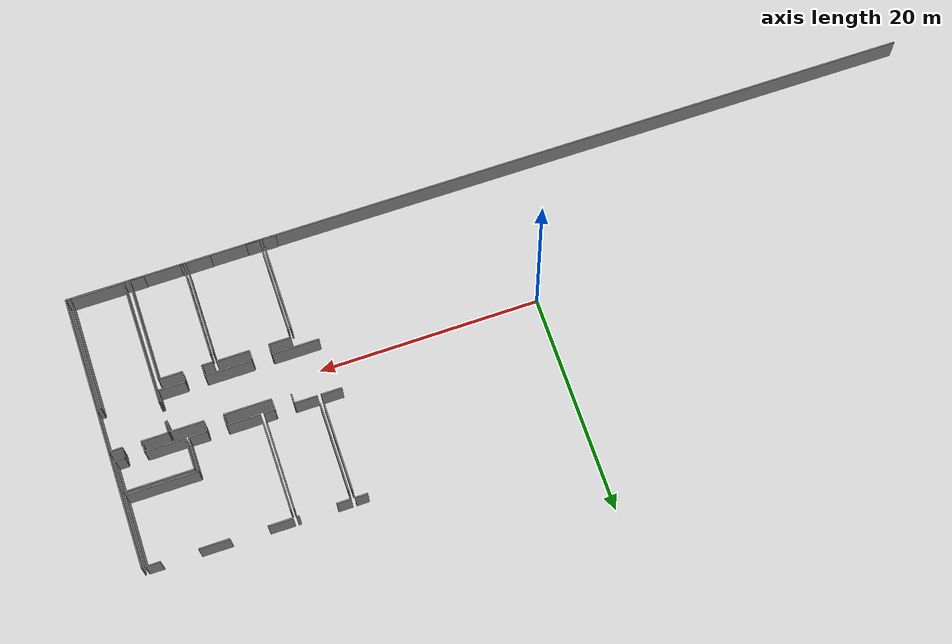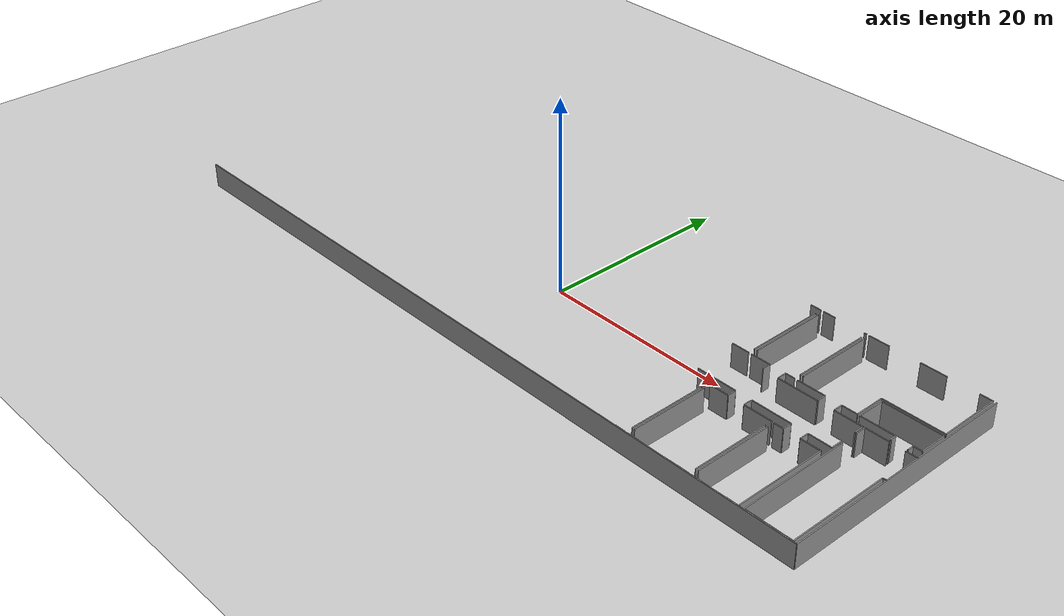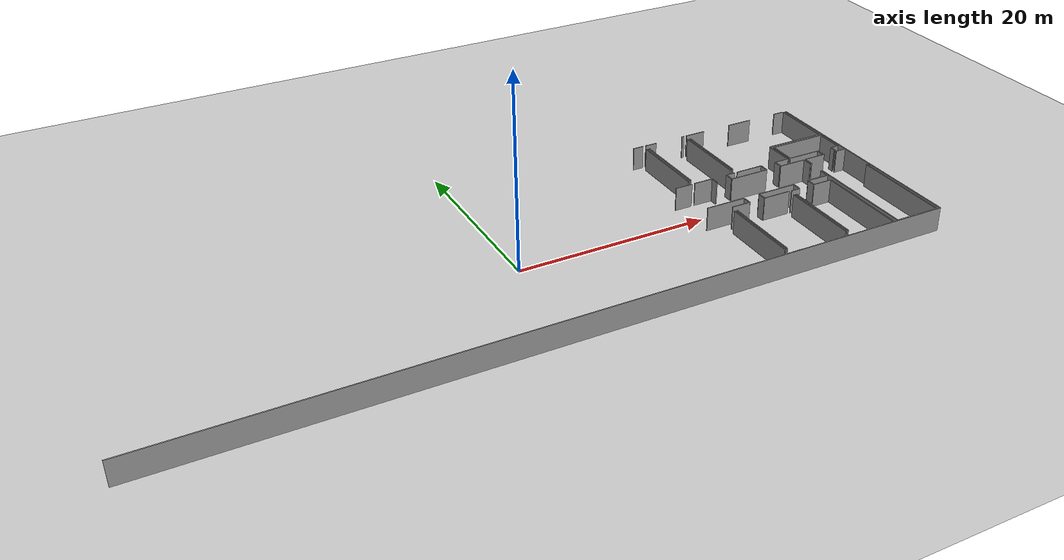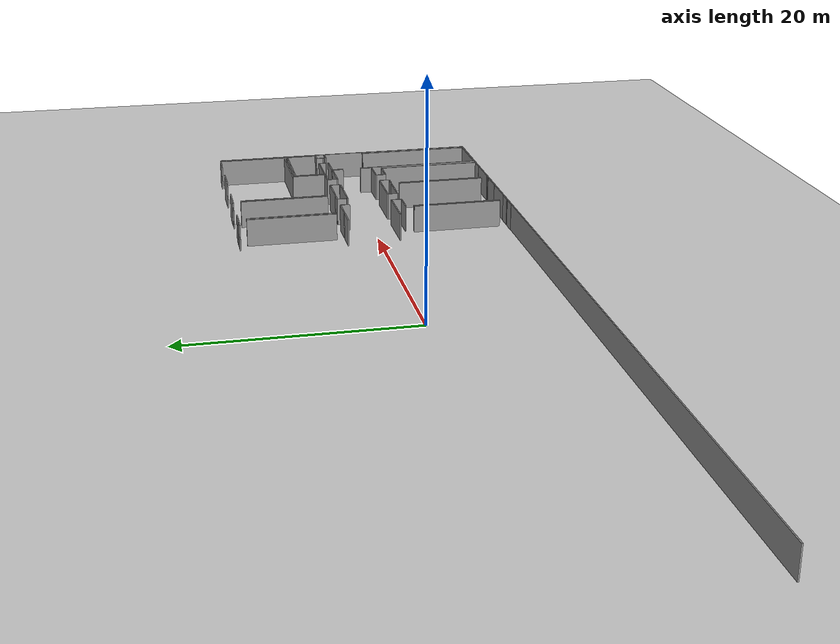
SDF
<sdf version="1.6">
 <world name="default">
  <model name="ground_plane">
   <static>1</static>
   <link name="link">
    <collision name="collision">
     <geometry><plane><normal>0 0 1</normal><size>100 100</size></plane></geometry>
     <surface><friction><ode><mu>100</mu><mu2>50</mu2></ode></friction></surface>
    </collision>
    <visual name="visual">
     <cast_shadows>0</cast_shadows>
     <geometry><plane><normal>0 0 1</normal><size>100 100</size></plane></geometry>
     <material>
      <script><uri>file://media/materials/scripts/gazebo.material</uri><name>Gazebo/Grey</name></script>
     </material>
    </visual>
   </link>
  </model>
  <model name="50052754">
   <static>1</static>
   <link name="Wall_102">
    <collision name="Wall_102_Collision">
     <geometry><box><size>4.26270246284 0.1 2.5</size></box></geometry>
     <pose>2.13135123142 0 1.25 0 0 0</pose>
    </collision>
    <visual name="Wall_102_Visual">
     <pose>2.13135123142 0 1.25 0 0 0</pose>
     <geometry><box><size>4.26270246284 0.1 2.5</size></box></geometry>
     <material>
      <script><uri>file://media/materials/scripts/gazebo.material</uri><name>Gazebo/Grey</name></script>
      <ambient>1 1 1 1</ambient>
     </material>
    </visual>
    <pose>63.7099115661 -10.5760562934 0 0 0 0.0</pose>
   </link>
   <link name="Wall_103">
    <collision name="Wall_103_Collision">
     <geometry><box><size>2.97670290659 0.1 2.5</size></box></geometry>
     <pose>1.48835145329 0 1.25 0 0 0</pose>
    </collision>
    <visual name="Wall_103_Visual">
     <pose>1.48835145329 0 1.25 0 0 0</pose>
     <geometry><box><size>2.97670290659 0.1 2.5</size></box></geometry>
     <material>
      <script><uri>file://media/materials/scripts/gazebo.material</uri><name>Gazebo/Grey</name></script>
      <ambient>1 1 1 1</ambient>
     </material>
    </visual>
    <pose>69.7074392215 -10.5760562934 0 0 0 0.0</pose>
   </link>
   <link name="Wall_104">
    <collision name="Wall_104_Collision">
     <geometry><box><size>1.05271165489 0.1 2.5</size></box></geometry>
     <pose>0.526355827443 0 1.25 0 0 0</pose>
    </collision>
    <visual name="Wall_104_Visual">
     <pose>0.526355827443 0 1.25 0 0 0</pose>
     <geometry><box><size>1.05271165489 0.1 2.5</size></box></geometry>
     <material>
      <script><uri>file://media/materials/scripts/gazebo.material</uri><name>Gazebo/Grey</name></script>
      <ambient>1 1 1 1</ambient>
     </material>
    </visual>
    <pose>72.6841421281 -10.5760562934 0 0 0 -1.57079632679</pose>
   </link>
   <link name="Wall_105">
    <collision name="Wall_105_Collision">
     <geometry><box><size>1.09290310311 0.1 2.5</size></box></geometry>
     <pose>0.546451551555 0 1.25 0 0 0</pose>
    </collision>
    <visual name="Wall_105_Visual">
     <pose>0.546451551555 0 1.25 0 0 0</pose>
     <geometry><box><size>1.09290310311 0.1 2.5</size></box></geometry>
     <material>
      <script><uri>file://media/materials/scripts/gazebo.material</uri><name>Gazebo/Grey</name></script>
      <ambient>1 1 1 1</ambient>
     </material>
    </visual>
    <pose>72.6841421281 -13.3779200609 0 0 0 -1.57079632679</pose>
   </link>
   <link name="Wall_106">
    <collision name="Wall_106_Collision">
     <geometry><box><size>2.43126565026 0.1 2.5</size></box></geometry>
     <pose>1.21563282513 0 1.25 0 0 0</pose>
    </collision>
    <visual name="Wall_106_Visual">
     <pose>1.21563282513 0 1.25 0 0 0</pose>
     <geometry><box><size>2.43126565026 0.1 2.5</size></box></geometry>
     <material>
      <script><uri>file://media/materials/scripts/gazebo.material</uri><name>Gazebo/Grey</name></script>
      <ambient>1 1 1 1</ambient>
     </material>
    </visual>
    <pose>72.6841421281 -14.470823164 0 0 0 3.14159265359</pose>
   </link>
   <link name="Wall_107">
    <collision name="Wall_107_Collision">
     <geometry><box><size>4.20995911122 0.1 2.5</size></box></geometry>
     <pose>2.10497955561 0 1.25 0 0 0</pose>
    </collision>
    <visual name="Wall_107_Visual">
     <pose>2.10497955561 0 1.25 0 0 0</pose>
     <geometry><box><size>4.20995911122 0.1 2.5</size></box></geometry>
     <material>
      <script><uri>file://media/materials/scripts/gazebo.material</uri><name>Gazebo/Grey</name></script>
      <ambient>1 1 1 1</ambient>
     </material>
    </visual>
    <pose>68.5000475451 -14.470823164 0 0 0 3.14159265359</pose>
   </link>
   <link name="Wall_108">
    <collision name="Wall_108_Collision">
     <geometry><box><size>4.222003867 0.1 2.5</size></box></geometry>
     <pose>2.1110019335 0 1.25 0 0 0</pose>
    </collision>
    <visual name="Wall_108_Visual">
     <pose>2.1110019335 0 1.25 0 0 0</pose>
     <geometry><box><size>4.222003867 0.1 2.5</size></box></geometry>
     <material>
      <script><uri>file://media/materials/scripts/gazebo.material</uri><name>Gazebo/Grey</name></script>
      <ambient>1 1 1 1</ambient>
     </material>
    </visual>
    <pose>62.5103806777 -14.470823164 0 0 0 3.14159265359</pose>
   </link>
   <link name="Wall_157">
    <collision name="Wall_157_Collision">
     <geometry><box><size>1.13144632159 0.1 2.5</size></box></geometry>
     <pose>0.565723160797 0 1.25 0 0 0</pose>
    </collision>
    <visual name="Wall_157_Visual">
     <pose>0.565723160797 0 1.25 0 0 0</pose>
     <geometry><box><size>1.13144632159 0.1 2.5</size></box></geometry>
     <material>
      <script><uri>file://media/materials/scripts/gazebo.material</uri><name>Gazebo/Grey</name></script>
      <ambient>1 1 1 1</ambient>
     </material>
    </visual>
    <pose>58.4804589686 -0.0124251164855 0 0 0 0.0</pose>
   </link>
   <link name="Wall_158">
    <collision name="Wall_158_Collision">
     <geometry><box><size>8.12944942787 0.1 2.5</size></box></geometry>
     <pose>4.06472471394 0 1.25 0 0 0</pose>
    </collision>
    <visual name="Wall_158_Visual">
     <pose>4.06472471394 0 1.25 0 0 0</pose>
     <geometry><box><size>8.12944942787 0.1 2.5</size></box></geometry>
     <material>
      <script><uri>file://media/materials/scripts/gazebo.material</uri><name>Gazebo/Grey</name></script>
      <ambient>1 1 1 1</ambient>
     </material>
    </visual>
    <pose>59.6119052902 -0.735490823798 0 0 0 -1.57079632679</pose>
   </link>
   <link name="Wall_159">
    <collision name="Wall_159_Collision">
     <geometry><box><size>1.87302291673 0.1 2.5</size></box></geometry>
     <pose>0.936511458366 0 1.25 0 0 0</pose>
    </collision>
    <visual name="Wall_159_Visual">
     <pose>0.936511458366 0 1.25 0 0 0</pose>
     <geometry><box><size>1.87302291673 0.1 2.5</size></box></geometry>
     <material>
      <script><uri>file://media/materials/scripts/gazebo.material</uri><name>Gazebo/Grey</name></script>
      <ambient>1 1 1 1</ambient>
     </material>
    </visual>
    <pose>59.6119052902 -9.60841865035 0 0 0 3.14159265359</pose>
   </link>
   <link name="Wall_163">
    <collision name="Wall_163_Collision">
     <geometry><box><size>8.10142952233 0.1 2.5</size></box></geometry>
     <pose>4.05071476117 0 1.25 0 0 0</pose>
    </collision>
    <visual name="Wall_163_Visual">
     <pose>4.05071476117 0 1.25 0 0 0</pose>
     <geometry><box><size>8.10142952233 0.1 2.5</size></box></geometry>
     <material>
      <script><uri>file://media/materials/scripts/gazebo.material</uri><name>Gazebo/Grey</name></script>
      <ambient>1 1 1 1</ambient>
     </material>
    </visual>
    <pose>59.9292529082 -8.85226156138 0 0 0 1.57079632679</pose>
   </link>
   <link name="Wall_164">
    <collision name="Wall_164_Collision">
     <geometry><box><size>1.28219594916 0.1 2.5</size></box></geometry>
     <pose>0.641097974579 0 1.25 0 0 0</pose>
    </collision>
    <visual name="Wall_164_Visual">
     <pose>0.641097974579 0 1.25 0 0 0</pose>
     <geometry><box><size>1.28219594916 0.1 2.5</size></box></geometry>
     <material>
      <script><uri>file://media/materials/scripts/gazebo.material</uri><name>Gazebo/Grey</name></script>
      <ambient>1 1 1 1</ambient>
     </material>
    </visual>
    <pose>59.9292529082 -0.0163555104758 0 0 0 0.0</pose>
   </link>
   <link name="Wall_165">
    <collision name="Wall_165_Collision">
     <geometry><box><size>0.252686297505 0.1 2.5</size></box></geometry>
     <pose>0.126343148753 0 1.25 0 0 0</pose>
    </collision>
    <visual name="Wall_165_Visual">
     <pose>0.126343148753 0 1.25 0 0 0</pose>
     <geometry><box><size>0.252686297505 0.1 2.5</size></box></geometry>
     <material>
      <script><uri>file://media/materials/scripts/gazebo.material</uri><name>Gazebo/Grey</name></script>
      <ambient>1 1 1 1</ambient>
     </material>
    </visual>
    <pose>64.4606168183 -0.0163555104758 0 0 0 0.0</pose>
   </link>
   <link name="Wall_166">
    <collision name="Wall_166_Collision">
     <geometry><box><size>8.11537608165 0.1 2.5</size></box></geometry>
     <pose>4.05768804083 0 1.25 0 0 0</pose>
    </collision>
    <visual name="Wall_166_Visual">
     <pose>4.05768804083 0 1.25 0 0 0</pose>
     <geometry><box><size>8.11537608165 0.1 2.5</size></box></geometry>
     <material>
      <script><uri>file://media/materials/scripts/gazebo.material</uri><name>Gazebo/Grey</name></script>
      <ambient>1 1 1 1</ambient>
     </material>
    </visual>
    <pose>64.7133031158 -0.73777298805 0 0 0 -1.57079632679</pose>
   </link>
   <link name="Wall_167">
    <collision name="Wall_167_Collision">
     <geometry><box><size>0.982344923769 0.1 2.5</size></box></geometry>
     <pose>0.491172461885 0 1.25 0 0 0</pose>
    </collision>
    <visual name="Wall_167_Visual">
     <pose>0.491172461885 0 1.25 0 0 0</pose>
     <geometry><box><size>0.982344923769 0.1 2.5</size></box></geometry>
     <material>
      <script><uri>file://media/materials/scripts/gazebo.material</uri><name>Gazebo/Grey</name></script>
      <ambient>1 1 1 1</ambient>
     </material>
    </visual>
    <pose>64.7133031158 -9.58673808996 0 0 0 3.14159265359</pose>
   </link>
   <link name="Wall_168">
    <collision name="Wall_168_Collision">
     <geometry><box><size>0.892833370313 0.1 2.5</size></box></geometry>
     <pose>0.446416685156 0 1.25 0 0 0</pose>
    </collision>
    <visual name="Wall_168_Visual">
     <pose>0.446416685156 0 1.25 0 0 0</pose>
     <geometry><box><size>0.892833370313 0.1 2.5</size></box></geometry>
     <material>
      <script><uri>file://media/materials/scripts/gazebo.material</uri><name>Gazebo/Grey</name></script>
      <ambient>1 1 1 1</ambient>
     </material>
    </visual>
    <pose>63.730958192 -9.58673808996 0 0 0 -1.57079632679</pose>
   </link>
   <link name="Wall_169">
    <collision name="Wall_169_Collision">
     <geometry><box><size>0.87571713842 0.1 2.5</size></box></geometry>
     <pose>0.43785856921 0 1.25 0 0 0</pose>
    </collision>
    <visual name="Wall_169_Visual">
     <pose>0.43785856921 0 1.25 0 0 0</pose>
     <geometry><box><size>0.87571713842 0.1 2.5</size></box></geometry>
     <material>
      <script><uri>file://media/materials/scripts/gazebo.material</uri><name>Gazebo/Grey</name></script>
      <ambient>1 1 1 1</ambient>
     </material>
    </visual>
    <pose>62.0024723446 -10.4795714603 0 0 0 1.57079632679</pose>
   </link>
   <link name="Wall_170">
    <collision name="Wall_170_Collision">
     <geometry><box><size>2.07322185943 0.1 2.5</size></box></geometry>
     <pose>1.03661092972 0 1.25 0 0 0</pose>
    </collision>
    <visual name="Wall_170_Visual">
     <pose>1.03661092972 0 1.25 0 0 0</pose>
     <geometry><box><size>2.07322185943 0.1 2.5</size></box></geometry>
     <material>
      <script><uri>file://media/materials/scripts/gazebo.material</uri><name>Gazebo/Grey</name></script>
      <ambient>1 1 1 1</ambient>
     </material>
    </visual>
    <pose>62.0024723446 -9.60385432185 0 0 0 3.14006378981</pose>
   </link>
   <link name="Wall_171">
    <collision name="Wall_171_Collision">
     <geometry><box><size>8.11284034359 0.1 2.5</size></box></geometry>
     <pose>4.0564201718 0 1.25 0 0 0</pose>
    </collision>
    <visual name="Wall_171_Visual">
     <pose>4.0564201718 0 1.25 0 0 0</pose>
     <geometry><box><size>8.11284034359 0.1 2.5</size></box></geometry>
     <material>
      <script><uri>file://media/materials/scripts/gazebo.material</uri><name>Gazebo/Grey</name></script>
      <ambient>1 1 1 1</ambient>
     </material>
    </visual>
    <pose>65.0004754509 -8.84630257694 0 0 0 1.57079632679</pose>
   </link>
   <link name="Wall_172">
    <collision name="Wall_172_Collision">
     <geometry><box><size>2.18301689435 0.1 2.5</size></box></geometry>
     <pose>1.09150844718 0 1.25 0 0 0</pose>
    </collision>
    <visual name="Wall_172_Visual">
     <pose>1.09150844718 0 1.25 0 0 0</pose>
     <geometry><box><size>2.18301689435 0.1 2.5</size></box></geometry>
     <material>
      <script><uri>file://media/materials/scripts/gazebo.material</uri><name>Gazebo/Grey</name></script>
      <ambient>1 1 1 1</ambient>
     </material>
    </visual>
    <pose>65.0004754509 -0.0185108878253 0 0 0 0.0</pose>
   </link>
   <link name="Wall_173">
    <collision name="Wall_173_Collision">
     <geometry><box><size>2.7161558211 0.1 2.5</size></box></geometry>
     <pose>1.35807791055 0 1.25 0 0 0</pose>
    </collision>
    <visual name="Wall_173_Visual">
     <pose>1.35807791055 0 1.25 0 0 0</pose>
     <geometry><box><size>2.7161558211 0.1 2.5</size></box></geometry>
     <material>
      <script><uri>file://media/materials/scripts/gazebo.material</uri><name>Gazebo/Grey</name></script>
      <ambient>1 1 1 1</ambient>
     </material>
    </visual>
    <pose>70.4554819487 -0.0185108878253 0 0 0 0.0</pose>
   </link>
   <link name="Wall_174">
    <collision name="Wall_174_Collision">
     <geometry><box><size>1.29360677042 0.1 2.5</size></box></geometry>
     <pose>0.64680338521 0 1.25 0 0 0</pose>
    </collision>
    <visual name="Wall_174_Visual">
     <pose>0.64680338521 0 1.25 0 0 0</pose>
     <geometry><box><size>1.29360677042 0.1 2.5</size></box></geometry>
     <material>
      <script><uri>file://media/materials/scripts/gazebo.material</uri><name>Gazebo/Grey</name></script>
      <ambient>1 1 1 1</ambient>
     </material>
    </visual>
    <pose>76.4331040604 -0.0185108878253 0 0 0 0.0</pose>
   </link>
   <link name="Wall_175">
    <collision name="Wall_175_Collision">
     <geometry><box><size>6.43899965134 0.1 2.5</size></box></geometry>
     <pose>3.21949982567 0 1.25 0 0 0</pose>
    </collision>
    <visual name="Wall_175_Visual">
     <pose>3.21949982567 0 1.25 0 0 0</pose>
     <geometry><box><size>6.43899965134 0.1 2.5</size></box></geometry>
     <material>
      <script><uri>file://media/materials/scripts/gazebo.material</uri><name>Gazebo/Grey</name></script>
      <ambient>1 1 1 1</ambient>
     </material>
    </visual>
    <pose>77.7267108308 -0.0185108878253 0 0 0 -1.57079632679</pose>
   </link>
   <link name="Wall_176">
    <collision name="Wall_176_Collision">
     <geometry><box><size>6.39437066151 0.1 2.5</size></box></geometry>
     <pose>3.19718533076 0 1.25 0 0 0</pose>
    </collision>
    <visual name="Wall_176_Visual">
     <pose>3.19718533076 0 1.25 0 0 0</pose>
     <geometry><box><size>6.39437066151 0.1 2.5</size></box></geometry>
     <material>
      <script><uri>file://media/materials/scripts/gazebo.material</uri><name>Gazebo/Grey</name></script>
      <ambient>1 1 1 1</ambient>
     </material>
    </visual>
    <pose>77.7267108308 -6.45751053916 0 0 0 3.14159265359</pose>
   </link>
   <link name="Wall_177">
    <collision name="Wall_177_Collision">
     <geometry><box><size>3.13328473169 0.1 2.5</size></box></geometry>
     <pose>1.56664236584 0 1.25 0 0 0</pose>
    </collision>
    <visual name="Wall_177_Visual">
     <pose>1.56664236584 0 1.25 0 0 0</pose>
     <geometry><box><size>3.13328473169 0.1 2.5</size></box></geometry>
     <material>
      <script><uri>file://media/materials/scripts/gazebo.material</uri><name>Gazebo/Grey</name></script>
      <ambient>1 1 1 1</ambient>
     </material>
    </visual>
    <pose>71.3323401693 -6.45751053916 0 0 0 -1.57079632679</pose>
   </link>
   <link name="Wall_178">
    <collision name="Wall_178_Collision">
     <geometry><box><size>1.62059019303 0.1 2.5</size></box></geometry>
     <pose>0.810295096517 0 1.25 0 0 0</pose>
    </collision>
    <visual name="Wall_178_Visual">
     <pose>0.810295096517 0 1.25 0 0 0</pose>
     <geometry><box><size>1.62059019303 0.1 2.5</size></box></geometry>
     <material>
      <script><uri>file://media/materials/scripts/gazebo.material</uri><name>Gazebo/Grey</name></script>
      <ambient>1 1 1 1</ambient>
     </material>
    </visual>
    <pose>71.3323401693 -9.59079527085 0 0 0 3.14159265359</pose>
   </link>
   <link name="Wall_179">
    <collision name="Wall_179_Collision">
     <geometry><box><size>0.887001172779 0.1 2.5</size></box></geometry>
     <pose>0.443500586389 0 1.25 0 0 0</pose>
    </collision>
    <visual name="Wall_179_Visual">
     <pose>0.443500586389 0 1.25 0 0 0</pose>
     <geometry><box><size>0.887001172779 0.1 2.5</size></box></geometry>
     <material>
      <script><uri>file://media/materials/scripts/gazebo.material</uri><name>Gazebo/Grey</name></script>
      <ambient>1 1 1 1</ambient>
     </material>
    </visual>
    <pose>69.7117499762 -9.59079527085 0 0 0 -1.57079632679</pose>
   </link>
   <link name="Wall_180">
    <collision name="Wall_180_Collision">
     <geometry><box><size>0.892072648895 0.1 2.5</size></box></geometry>
     <pose>0.446036324448 0 1.25 0 0 0</pose>
    </collision>
    <visual name="Wall_180_Visual">
     <pose>0.446036324448 0 1.25 0 0 0</pose>
     <geometry><box><size>0.892072648895 0.1 2.5</size></box></geometry>
     <material>
      <script><uri>file://media/materials/scripts/gazebo.material</uri><name>Gazebo/Grey</name></script>
      <ambient>1 1 1 1</ambient>
     </material>
    </visual>
    <pose>67.9836444895 -10.4777964436 0 0 0 1.57079632679</pose>
   </link>
   <link name="Wall_181">
    <collision name="Wall_181_Collision">
     <geometry><box><size>2.98320405315 0.1 2.5</size></box></geometry>
     <pose>1.49160202658 0 1.25 0 0 0</pose>
    </collision>
    <visual name="Wall_181_Visual">
     <pose>1.49160202658 0 1.25 0 0 0</pose>
     <geometry><box><size>2.98320405315 0.1 2.5</size></box></geometry>
     <material>
      <script><uri>file://media/materials/scripts/gazebo.material</uri><name>Gazebo/Grey</name></script>
      <ambient>1 1 1 1</ambient>
     </material>
    </visual>
    <pose>67.9836444895 -9.58572379473 0 0 0 -3.13674760671</pose>
   </link>
   <link name="Wall_182">
    <collision name="Wall_182_Collision">
     <geometry><box><size>2.86779295699 0.1 2.5</size></box></geometry>
     <pose>1.43389647849 0 1.25 0 0 0</pose>
    </collision>
    <visual name="Wall_182_Visual">
     <pose>1.43389647849 0 1.25 0 0 0</pose>
     <geometry><box><size>2.86779295699 0.1 2.5</size></box></geometry>
     <material>
      <script><uri>file://media/materials/scripts/gazebo.material</uri><name>Gazebo/Grey</name></script>
      <ambient>1 1 1 1</ambient>
     </material>
    </visual>
    <pose>71.6007480427 -9.60816507655 0 0 0 1.57079632679</pose>
   </link>
   <link name="Wall_183">
    <collision name="Wall_183_Collision">
     <geometry><box><size>6.16894354813 0.1 2.5</size></box></geometry>
     <pose>3.08447177407 0 1.25 0 0 0</pose>
    </collision>
    <visual name="Wall_183_Visual">
     <pose>3.08447177407 0 1.25 0 0 0</pose>
     <geometry><box><size>6.16894354813 0.1 2.5</size></box></geometry>
     <material>
      <script><uri>file://media/materials/scripts/gazebo.material</uri><name>Gazebo/Grey</name></script>
      <ambient>1 1 1 1</ambient>
     </material>
    </visual>
    <pose>71.6007480427 -6.74037211956 0 0 0 0.0</pose>
   </link>
   <link name="Wall_184">
    <collision name="Wall_184_Collision">
     <geometry><box><size>2.86779295699 0.1 2.5</size></box></geometry>
     <pose>1.43389647849 0 1.25 0 0 0</pose>
    </collision>
    <visual name="Wall_184_Visual">
     <pose>1.43389647849 0 1.25 0 0 0</pose>
     <geometry><box><size>2.86779295699 0.1 2.5</size></box></geometry>
     <material>
      <script><uri>file://media/materials/scripts/gazebo.material</uri><name>Gazebo/Grey</name></script>
      <ambient>1 1 1 1</ambient>
     </material>
    </visual>
    <pose>77.7696915909 -6.74037211956 0 0 0 -1.57079632679</pose>
   </link>
   <link name="Wall_185">
    <collision name="Wall_185_Collision">
     <geometry><box><size>0.883704713303 0.1 2.5</size></box></geometry>
     <pose>0.441852356652 0 1.25 0 0 0</pose>
    </collision>
    <visual name="Wall_185_Visual">
     <pose>0.441852356652 0 1.25 0 0 0</pose>
     <geometry><box><size>0.883704713303 0.1 2.5</size></box></geometry>
     <material>
      <script><uri>file://media/materials/scripts/gazebo.material</uri><name>Gazebo/Grey</name></script>
      <ambient>1 1 1 1</ambient>
     </material>
    </visual>
    <pose>77.7696915909 -9.60816507655 0 0 0 3.14159265359</pose>
   </link>
   <link name="Wall_186">
    <collision name="Wall_186_Collision">
     <geometry><box><size>0.658277599924 0.1 2.5</size></box></geometry>
     <pose>0.329138799962 0 1.25 0 0 0</pose>
    </collision>
    <visual name="Wall_186_Visual">
     <pose>0.329138799962 0 1.25 0 0 0</pose>
     <geometry><box><size>0.658277599924 0.1 2.5</size></box></geometry>
     <material>
      <script><uri>file://media/materials/scripts/gazebo.material</uri><name>Gazebo/Grey</name></script>
      <ambient>1 1 1 1</ambient>
     </material>
    </visual>
    <pose>76.8859868776 -9.60816507655 0 0 0 -1.57079632679</pose>
   </link>
   <link name="Wall_187">
    <collision name="Wall_187_Collision">
     <geometry><box><size>0.080129322641 0.1 2.5</size></box></geometry>
     <pose>0.0400646613205 0 1.25 0 0 0</pose>
    </collision>
    <visual name="Wall_187_Visual">
     <pose>0.0400646613205 0 1.25 0 0 0</pose>
     <geometry><box><size>0.080129322641 0.1 2.5</size></box></geometry>
     <material>
      <script><uri>file://media/materials/scripts/gazebo.material</uri><name>Gazebo/Grey</name></script>
      <ambient>1 1 1 1</ambient>
     </material>
    </visual>
    <pose>76.8859868776 -10.2664426765 0 0 0 3.14159265359</pose>
   </link>
   <link name="Wall_188">
    <collision name="Wall_188_Collision">
     <geometry><box><size>0.0986402104663 0.1 2.5</size></box></geometry>
     <pose>0.0493201052331 0 1.25 0 0 0</pose>
    </collision>
    <visual name="Wall_188_Visual">
     <pose>0.0493201052331 0 1.25 0 0 0</pose>
     <geometry><box><size>0.0986402104663 0.1 2.5</size></box></geometry>
     <material>
      <script><uri>file://media/materials/scripts/gazebo.material</uri><name>Gazebo/Grey</name></script>
      <ambient>1 1 1 1</ambient>
     </material>
    </visual>
    <pose>75.2546197978 -10.2664426765 0 0 0 3.14159265359</pose>
   </link>
   <link name="Wall_189">
    <collision name="Wall_189_Collision">
     <geometry><box><size>0.663222289138 0.1 2.5</size></box></geometry>
     <pose>0.331611144569 0 1.25 0 0 0</pose>
    </collision>
    <visual name="Wall_189_Visual">
     <pose>0.331611144569 0 1.25 0 0 0</pose>
     <geometry><box><size>0.663222289138 0.1 2.5</size></box></geometry>
     <material>
      <script><uri>file://media/materials/scripts/gazebo.material</uri><name>Gazebo/Grey</name></script>
      <ambient>1 1 1 1</ambient>
     </material>
    </visual>
    <pose>75.1559795873 -10.2664426765 0 0 0 1.57079632679</pose>
   </link>
   <link name="Wall_190">
    <collision name="Wall_190_Collision">
     <geometry><box><size>3.55523498317 0.1 2.5</size></box></geometry>
     <pose>1.77761749158 0 1.25 0 0 0</pose>
    </collision>
    <visual name="Wall_190_Visual">
     <pose>1.77761749158 0 1.25 0 0 0</pose>
     <geometry><box><size>3.55523498317 0.1 2.5</size></box></geometry>
     <material>
      <script><uri>file://media/materials/scripts/gazebo.material</uri><name>Gazebo/Grey</name></script>
      <ambient>1 1 1 1</ambient>
     </material>
    </visual>
    <pose>75.1559795873 -9.60322038733 0 0 0 -3.1402018339</pose>
   </link>
   <link name="Wall_191">
    <collision name="Wall_191_Collision">
     <geometry><box><size>4.79584138958 0.1 2.5</size></box></geometry>
     <pose>2.39792069479 0 1.25 0 0 0</pose>
    </collision>
    <visual name="Wall_191_Visual">
     <pose>2.39792069479 0 1.25 0 0 0</pose>
     <geometry><box><size>4.79584138958 0.1 2.5</size></box></geometry>
     <material>
      <script><uri>file://media/materials/scripts/gazebo.material</uri><name>Gazebo/Grey</name></script>
      <ambient>1 1 1 1</ambient>
     </material>
    </visual>
    <pose>72.8716599575 -24.9689055121 0 0 0 0.0</pose>
   </link>
   <link name="Wall_192">
    <collision name="Wall_192_Collision">
     <geometry><box><size>10.4885733304 0.1 2.5</size></box></geometry>
     <pose>5.24428666519 0 1.25 0 0 0</pose>
    </collision>
    <visual name="Wall_192_Visual">
     <pose>5.24428666519 0 1.25 0 0 0</pose>
     <geometry><box><size>10.4885733304 0.1 2.5</size></box></geometry>
     <material>
      <script><uri>file://media/materials/scripts/gazebo.material</uri><name>Gazebo/Grey</name></script>
      <ambient>1 1 1 1</ambient>
     </material>
    </visual>
    <pose>77.6675013471 -24.9689055121 0 0 0 1.57079632679</pose>
   </link>
   <link name="Wall_193">
    <collision name="Wall_193_Collision">
     <geometry><box><size>0.385685758661 0.1 2.5</size></box></geometry>
     <pose>0.192842879331 0 1.25 0 0 0</pose>
    </collision>
    <visual name="Wall_193_Visual">
     <pose>0.192842879331 0 1.25 0 0 0</pose>
     <geometry><box><size>0.385685758661 0.1 2.5</size></box></geometry>
     <material>
      <script><uri>file://media/materials/scripts/gazebo.material</uri><name>Gazebo/Grey</name></script>
      <ambient>1 1 1 1</ambient>
     </material>
    </visual>
    <pose>77.6675013471 -14.4803321817 0 0 0 0.0</pose>
   </link>
   <link name="Wall_194">
    <collision name="Wall_194_Collision">
     <geometry><box><size>1.214491743 0.1 2.5</size></box></geometry>
     <pose>0.607245871501 0 1.25 0 0 0</pose>
    </collision>
    <visual name="Wall_194_Visual">
     <pose>0.607245871501 0 1.25 0 0 0</pose>
     <geometry><box><size>1.214491743 0.1 2.5</size></box></geometry>
     <material>
      <script><uri>file://media/materials/scripts/gazebo.material</uri><name>Gazebo/Grey</name></script>
      <ambient>1 1 1 1</ambient>
     </material>
    </visual>
    <pose>78.0531871058 -10.5460077974 0 0 0 3.14159265359</pose>
   </link>
   <link name="Wall_195">
    <collision name="Wall_195_Collision">
     <geometry><box><size>2.40793686012 0.1 2.5</size></box></geometry>
     <pose>1.20396843006 0 1.25 0 0 0</pose>
    </collision>
    <visual name="Wall_195_Visual">
     <pose>1.20396843006 0 1.25 0 0 0</pose>
     <geometry><box><size>2.40793686012 0.1 2.5</size></box></geometry>
     <material>
      <script><uri>file://media/materials/scripts/gazebo.material</uri><name>Gazebo/Grey</name></script>
      <ambient>1 1 1 1</ambient>
     </material>
    </visual>
    <pose>75.245237567 -10.5460077974 0 0 0 3.14159265359</pose>
   </link>
   <link name="Wall_196">
    <collision name="Wall_196_Collision">
     <geometry><box><size>1.06944752607 0.1 2.5</size></box></geometry>
     <pose>0.534723763035 0 1.25 0 0 0</pose>
    </collision>
    <visual name="Wall_196_Visual">
     <pose>0.534723763035 0 1.25 0 0 0</pose>
     <geometry><box><size>1.06944752607 0.1 2.5</size></box></geometry>
     <material>
      <script><uri>file://media/materials/scripts/gazebo.material</uri><name>Gazebo/Grey</name></script>
      <ambient>1 1 1 1</ambient>
     </material>
    </visual>
    <pose>72.8373007068 -10.5460077974 0 0 0 -1.57079632679</pose>
   </link>
   <link name="Wall_197">
    <collision name="Wall_197_Collision">
     <geometry><box><size>11.6011792845 0.1 2.5</size></box></geometry>
     <pose>5.80058964225 0 1.25 0 0 0</pose>
    </collision>
    <visual name="Wall_197_Visual">
     <pose>5.80058964225 0 1.25 0 0 0</pose>
     <geometry><box><size>11.6011792845 0.1 2.5</size></box></geometry>
     <material>
      <script><uri>file://media/materials/scripts/gazebo.material</uri><name>Gazebo/Grey</name></script>
      <ambient>1 1 1 1</ambient>
     </material>
    </visual>
    <pose>72.8373007068 -13.3677771086 0 0 0 -1.56783461919</pose>
   </link>
   <link name="Wall_198">
    <collision name="Wall_198_Collision">
     <geometry><box><size>8.10307775207 0.1 2.5</size></box></geometry>
     <pose>4.05153887603 0 1.25 0 0 0</pose>
    </collision>
    <visual name="Wall_198_Visual">
     <pose>4.05153887603 0 1.25 0 0 0</pose>
     <geometry><box><size>8.10307775207 0.1 2.5</size></box></geometry>
     <material>
      <script><uri>file://media/materials/scripts/gazebo.material</uri><name>Gazebo/Grey</name></script>
      <ambient>1 1 1 1</ambient>
     </material>
    </visual>
    <pose>67.5159276047 -24.2699293163 0 0 0 1.57079632679</pose>
   </link>
   <link name="Wall_199">
    <collision name="Wall_199_Collision">
     <geometry><box><size>0.984627088022 0.1 2.5</size></box></geometry>
     <pose>0.492313544011 0 1.25 0 0 0</pose>
    </collision>
    <visual name="Wall_199_Visual">
     <pose>0.492313544011 0 1.25 0 0 0</pose>
     <geometry><box><size>0.984627088022 0.1 2.5</size></box></geometry>
     <material>
      <script><uri>file://media/materials/scripts/gazebo.material</uri><name>Gazebo/Grey</name></script>
      <ambient>1 1 1 1</ambient>
     </material>
    </visual>
    <pose>67.5159276047 -15.4316143142 0 0 0 0.0</pose>
   </link>
   <link name="Wall_200">
    <collision name="Wall_200_Collision">
     <geometry><box><size>0.915401439031 0.1 2.5</size></box></geometry>
     <pose>0.457700719516 0 1.25 0 0 0</pose>
    </collision>
    <visual name="Wall_200_Visual">
     <pose>0.457700719516 0 1.25 0 0 0</pose>
     <geometry><box><size>0.915401439031 0.1 2.5</size></box></geometry>
     <material>
      <script><uri>file://media/materials/scripts/gazebo.material</uri><name>Gazebo/Grey</name></script>
      <ambient>1 1 1 1</ambient>
     </material>
    </visual>
    <pose>68.5005546927 -15.4316143142 0 0 0 1.57079632679</pose>
   </link>
   <link name="Wall_201">
    <collision name="Wall_201_Collision">
     <geometry><box><size>0.905004912992 0.1 2.5</size></box></geometry>
     <pose>0.452502456496 0 1.25 0 0 0</pose>
    </collision>
    <visual name="Wall_201_Visual">
     <pose>0.452502456496 0 1.25 0 0 0</pose>
     <geometry><box><size>0.905004912992 0.1 2.5</size></box></geometry>
     <material>
      <script><uri>file://media/materials/scripts/gazebo.material</uri><name>Gazebo/Grey</name></script>
      <ambient>1 1 1 1</ambient>
     </material>
    </visual>
    <pose>70.2522425433 -14.5162128752 0 0 0 -1.57079632679</pose>
   </link>
   <link name="Wall_202">
    <collision name="Wall_202_Collision">
     <geometry><box><size>2.09299819329 0.1 2.5</size></box></geometry>
     <pose>1.04649909664 0 1.25 0 0 0</pose>
    </collision>
    <visual name="Wall_202_Visual">
     <pose>1.04649909664 0 1.25 0 0 0</pose>
     <geometry><box><size>2.09299819329 0.1 2.5</size></box></geometry>
     <material>
      <script><uri>file://media/materials/scripts/gazebo.material</uri><name>Gazebo/Grey</name></script>
      <ambient>1 1 1 1</ambient>
     </material>
    </visual>
    <pose>70.2522425433 -15.4212177882 0 0 0 0.0</pose>
   </link>
   <link name="Wall_203">
    <collision name="Wall_203_Collision">
     <geometry><box><size>9.59054169704 0.1 2.5</size></box></geometry>
     <pose>4.79527084852 0 1.25 0 0 0</pose>
    </collision>
    <visual name="Wall_203_Visual">
     <pose>4.79527084852 0 1.25 0 0 0</pose>
     <geometry><box><size>9.59054169704 0.1 2.5</size></box></geometry>
     <material>
      <script><uri>file://media/materials/scripts/gazebo.material</uri><name>Gazebo/Grey</name></script>
      <ambient>1 1 1 1</ambient>
     </material>
    </visual>
    <pose>72.3452407366 -15.4212177882 0 0 0 -1.57079632679</pose>
   </link>
   <link name="Wall_204">
    <collision name="Wall_204_Collision">
     <geometry><box><size>1.31351231418 0.1 2.5</size></box></geometry>
     <pose>0.656756157089 0 1.25 0 0 0</pose>
    </collision>
    <visual name="Wall_204_Visual">
     <pose>0.656756157089 0 1.25 0 0 0</pose>
     <geometry><box><size>1.31351231418 0.1 2.5</size></box></geometry>
     <material>
      <script><uri>file://media/materials/scripts/gazebo.material</uri><name>Gazebo/Grey</name></script>
      <ambient>1 1 1 1</ambient>
     </material>
    </visual>
    <pose>72.3452407366 -25.0117594852 0 0 0 3.14159265359</pose>
   </link>
   <link name="Wall_205">
    <collision name="Wall_205_Collision">
     <geometry><box><size>0.246479250257 0.1 2.5</size></box></geometry>
     <pose>0.123239625129 0 1.25 0 0 0</pose>
    </collision>
    <visual name="Wall_205_Visual">
     <pose>0.123239625129 0 1.25 0 0 0</pose>
     <geometry><box><size>0.246479250257 0.1 2.5</size></box></geometry>
     <material>
      <script><uri>file://media/materials/scripts/gazebo.material</uri><name>Gazebo/Grey</name></script>
      <ambient>1 1 1 1</ambient>
     </material>
    </visual>
    <pose>67.7624013439 -25.0117594852 0 0 0 -3.13490551047</pose>
   </link>
   <link name="Wall_206">
    <collision name="Wall_206_Collision">
     <geometry><box><size>8.10269739136 0.1 2.5</size></box></geometry>
     <pose>4.05134869568 0 1.25 0 0 0</pose>
    </collision>
    <visual name="Wall_206_Visual">
     <pose>4.05134869568 0 1.25 0 0 0</pose>
     <geometry><box><size>8.10269739136 0.1 2.5</size></box></geometry>
     <material>
      <script><uri>file://media/materials/scripts/gazebo.material</uri><name>Gazebo/Grey</name></script>
      <ambient>1 1 1 1</ambient>
     </material>
    </visual>
    <pose>60.5396050588 -24.2671400044 0 0 0 1.57079632679</pose>
   </link>
   <link name="Wall_207">
    <collision name="Wall_207_Collision">
     <geometry><box><size>1.98941329361 0.1 2.5</size></box></geometry>
     <pose>0.994706646803 0 1.25 0 0 0</pose>
    </collision>
    <visual name="Wall_207_Visual">
     <pose>0.994706646803 0 1.25 0 0 0</pose>
     <geometry><box><size>1.98941329361 0.1 2.5</size></box></geometry>
     <material>
      <script><uri>file://media/materials/scripts/gazebo.material</uri><name>Gazebo/Grey</name></script>
      <ambient>1 1 1 1</ambient>
     </material>
    </visual>
    <pose>60.5396050588 -15.418935624 0 0 0 0.0</pose>
   </link>
   <link name="Wall_208">
    <collision name="Wall_208_Collision">
     <geometry><box><size>0.887635107293 0.1 2.5</size></box></geometry>
     <pose>0.443817553647 0 1.25 0 0 0</pose>
    </collision>
    <visual name="Wall_208_Visual">
     <pose>0.443817553647 0 1.25 0 0 0</pose>
     <geometry><box><size>0.887635107293 0.1 2.5</size></box></geometry>
     <material>
      <script><uri>file://media/materials/scripts/gazebo.material</uri><name>Gazebo/Grey</name></script>
      <ambient>1 1 1 1</ambient>
     </material>
    </visual>
    <pose>62.5290183524 -15.418935624 0 0 0 1.57079632679</pose>
   </link>
   <link name="Wall_209">
    <collision name="Wall_209_Collision">
     <geometry><box><size>0.871152809915 0.1 2.5</size></box></geometry>
     <pose>0.435576404957 0 1.25 0 0 0</pose>
    </collision>
    <visual name="Wall_209_Visual">
     <pose>0.435576404957 0 1.25 0 0 0</pose>
     <geometry><box><size>0.871152809915 0.1 2.5</size></box></geometry>
     <material>
      <script><uri>file://media/materials/scripts/gazebo.material</uri><name>Gazebo/Grey</name></script>
      <ambient>1 1 1 1</ambient>
     </material>
    </visual>
    <pose>64.2809597769 -14.5313005167 0 0 0 -1.57079632679</pose>
   </link>
   <link name="Wall_210">
    <collision name="Wall_210_Collision">
     <geometry><box><size>2.95438841168 0.1 2.5</size></box></geometry>
     <pose>1.47719420584 0 1.25 0 0 0</pose>
    </collision>
    <visual name="Wall_210_Visual">
     <pose>1.47719420584 0 1.25 0 0 0</pose>
     <geometry><box><size>2.95438841168 0.1 2.5</size></box></geometry>
     <material>
      <script><uri>file://media/materials/scripts/gazebo.material</uri><name>Gazebo/Grey</name></script>
      <ambient>1 1 1 1</ambient>
     </material>
    </visual>
    <pose>64.2809597769 -15.4024533266 0 0 0 0.0</pose>
   </link>
   <link name="Wall_211">
    <collision name="Wall_211_Collision">
     <geometry><box><size>8.11106532695 0.1 2.5</size></box></geometry>
     <pose>4.05553266348 0 1.25 0 0 0</pose>
    </collision>
    <visual name="Wall_211_Visual">
     <pose>4.05553266348 0 1.25 0 0 0</pose>
     <geometry><box><size>8.11106532695 0.1 2.5</size></box></geometry>
     <material>
      <script><uri>file://media/materials/scripts/gazebo.material</uri><name>Gazebo/Grey</name></script>
      <ambient>1 1 1 1</ambient>
     </material>
    </visual>
    <pose>67.2353481885 -16.1644426131 0 0 0 -1.57079632679</pose>
   </link>
   <link name="Wall_212">
    <collision name="Wall_212_Collision">
     <geometry><box><size>2.21623506292 0.1 2.5</size></box></geometry>
     <pose>1.10811753146 0 1.25 0 0 0</pose>
    </collision>
    <visual name="Wall_212_Visual">
     <pose>1.10811753146 0 1.25 0 0 0</pose>
     <geometry><box><size>2.21623506292 0.1 2.5</size></box></geometry>
     <material>
      <script><uri>file://media/materials/scripts/gazebo.material</uri><name>Gazebo/Grey</name></script>
      <ambient>1 1 1 1</ambient>
     </material>
    </visual>
    <pose>67.2353481885 -25.0132809281 0 0 0 3.14159265359</pose>
   </link>
   <link name="Wall_213">
    <collision name="Wall_213_Collision">
     <geometry><box><size>1.22857221361 0.1 2.5</size></box></geometry>
     <pose>0.614286106804 0 1.25 0 0 0</pose>
    </collision>
    <visual name="Wall_213_Visual">
     <pose>0.614286106804 0 1.25 0 0 0</pose>
     <geometry><box><size>1.22857221361 0.1 2.5</size></box></geometry>
     <material>
      <script><uri>file://media/materials/scripts/gazebo.material</uri><name>Gazebo/Grey</name></script>
      <ambient>1 1 1 1</ambient>
     </material>
    </visual>
    <pose>61.768170148 -25.0132809281 0 0 0 3.138187094</pose>
   </link>
   <link name="Wall_219">
    <collision name="Wall_219_Collision">
     <geometry><box><size>8.11486893404 0.1 2.5</size></box></geometry>
     <pose>4.05743446702 0 1.25 0 0 0</pose>
    </collision>
    <visual name="Wall_219_Visual">
     <pose>4.05743446702 0 1.25 0 0 0</pose>
     <geometry><box><size>8.11486893404 0.1 2.5</size></box></geometry>
     <material>
      <script><uri>file://media/materials/scripts/gazebo.material</uri><name>Gazebo/Grey</name></script>
      <ambient>1 1 1 1</ambient>
     </material>
    </visual>
    <pose>60.2709436115 -16.1574693334 0 0 0 -1.57079632679</pose>
   </link>
   <link name="Wall_220">
    <collision name="Wall_220_Collision">
     <geometry><box><size>1.22019715363 0.1 2.5</size></box></geometry>
     <pose>0.610098576817 0 1.25 0 0 0</pose>
    </collision>
    <visual name="Wall_220_Visual">
     <pose>0.610098576817 0 1.25 0 0 0</pose>
     <geometry><box><size>1.22019715363 0.1 2.5</size></box></geometry>
     <material>
      <script><uri>file://media/materials/scripts/gazebo.material</uri><name>Gazebo/Grey</name></script>
      <ambient>1 1 1 1</ambient>
     </material>
    </visual>
    <pose>60.2709436115 -25.0117594852 0 0 0 3.14159265359</pose>
   </link>
   <link name="Wall_258">
    <collision name="Wall_258_Collision">
     <geometry><box><size>25.0388918825 0.1 2.5</size></box></geometry>
     <pose>12.5194459412 0 1.25 0 0 0</pose>
    </collision>
    <visual name="Wall_258_Visual">
     <pose>12.5194459412 0 1.25 0 0 0</pose>
     <geometry><box><size>25.0388918825 0.1 2.5</size></box></geometry>
     <material>
      <script><uri>file://media/materials/scripts/gazebo.material</uri><name>Gazebo/Grey</name></script>
      <ambient>1 1 1 1</ambient>
     </material>
    </visual>
    <pose>78.0531871058 -25.0388918825 0 0 0 1.57079632679</pose>
   </link>
   <link name="Wall_259">
    <collision name="Wall_259_Collision">
     <geometry><box><size>78.0531871058 0.1 2.5</size></box></geometry>
     <pose>39.0265935529 0 1.25 0 0 0</pose>
    </collision>
    <visual name="Wall_259_Visual">
     <pose>39.0265935529 0 1.25 0 0 0</pose>
     <geometry><box><size>78.0531871058 0.1 2.5</size></box></geometry>
     <material>
      <script><uri>file://media/materials/scripts/gazebo.material</uri><name>Gazebo/Grey</name></script>
      <ambient>1 1 1 1</ambient>
     </material>
    </visual>
    <pose>78.0531871058 -25.0388918825 0 0 0 3.14159265359</pose>
   </link>
   <pose>-39.0 12.5388918825 0 0 0 0</pose>
  </model>
 </world>
</sdf>
